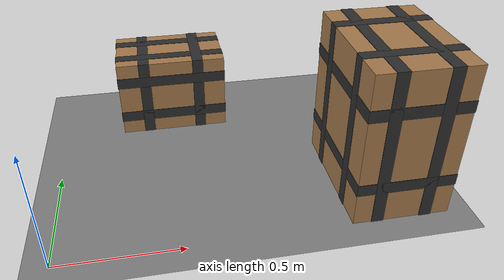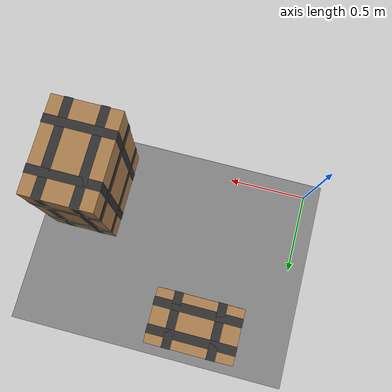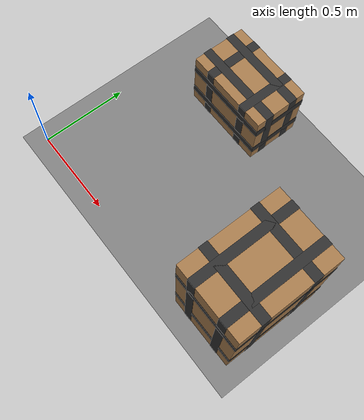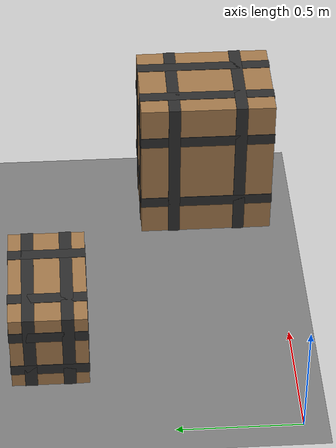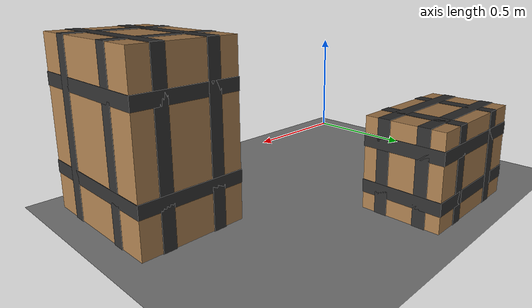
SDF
<sdf version="1.9">
 <world name="ecps295_lowbox_s37_monitor">
  <model name="ground_plane">
   <static>true</static>
   <link name="link">
    <collision name="collision">
     <geometry><plane><normal>0 0 1</normal><size>50 50</size></plane></geometry>
    </collision>
    <visual name="visual">
     <geometry><plane><normal>0 0 1</normal><size>50 50</size></plane></geometry>
     <material><ambient>0.5 0.5 0.5 1</ambient><diffuse>0.5 0.5 0.5 1</diffuse></material>
    </visual>
   </link>
  </model>
  <model name="lb0">
   <static>true</static>
   <pose>0.52 0.98 0.179 0 0 0</pose>
   <link name="link">
    <collision name="c"><geometry><box><size>0.5 0.31 0.36</size></box></geometry></collision>
    <visual name="v">
     <geometry><box><size>0.5 0.31 0.36</size></box></geometry>
     <material><ambient>0.65 0.48 0.30 1</ambient><diffuse>0.65 0.48 0.30 1</diffuse></material>
    </visual>
    <visual name="tape_ring0">
     <pose>0.000 0.000 -0.090 0 0 0</pose>
     <geometry><box><size>0.504 0.314 0.050</size></box></geometry>
     <material><ambient>0.18 0.18 0.18 1</ambient><diffuse>0.18 0.18 0.18 1</diffuse></material>
    </visual>
    <visual name="tape_bx0">
     <pose>-0.125 0.000 0.000 0 0 0</pose>
     <geometry><box><size>0.050 0.314 0.364</size></box></geometry>
     <material><ambient>0.18 0.18 0.18 1</ambient><diffuse>0.18 0.18 0.18 1</diffuse></material>
    </visual>
    <visual name="tape_by0">
     <pose>0.000 -0.077 0.000 0 0 0</pose>
     <geometry><box><size>0.504 0.050 0.364</size></box></geometry>
     <material><ambient>0.18 0.18 0.18 1</ambient><diffuse>0.18 0.18 0.18 1</diffuse></material>
    </visual>
    <visual name="tape_ring1">
     <pose>0.000 0.000 0.090 0 0 0</pose>
     <geometry><box><size>0.504 0.314 0.050</size></box></geometry>
     <material><ambient>0.18 0.18 0.18 1</ambient><diffuse>0.18 0.18 0.18 1</diffuse></material>
    </visual>
    <visual name="tape_bx1">
     <pose>0.125 0.000 0.000 0 0 0</pose>
     <geometry><box><size>0.050 0.314 0.364</size></box></geometry>
     <material><ambient>0.18 0.18 0.18 1</ambient><diffuse>0.18 0.18 0.18 1</diffuse></material>
    </visual>
    <visual name="tape_by1">
     <pose>0.000 0.077 0.000 0 0 0</pose>
     <geometry><box><size>0.504 0.050 0.364</size></box></geometry>
     <material><ambient>0.18 0.18 0.18 1</ambient><diffuse>0.18 0.18 0.18 1</diffuse></material>
    </visual>
   </link>
  </model>
  <model name="lb1">
   <static>true</static>
   <pose>1.35 0.29 0.332 0 0 0</pose>
   <link name="link">
    <collision name="c"><geometry><box><size>0.4 0.56 0.66</size></box></geometry></collision>
    <visual name="v">
     <geometry><box><size>0.4 0.56 0.66</size></box></geometry>
     <material><ambient>0.65 0.48 0.30 1</ambient><diffuse>0.65 0.48 0.30 1</diffuse></material>
    </visual>
    <visual name="tape_ring0">
     <pose>0.000 0.000 -0.165 0 0 0</pose>
     <geometry><box><size>0.404 0.564 0.050</size></box></geometry>
     <material><ambient>0.18 0.18 0.18 1</ambient><diffuse>0.18 0.18 0.18 1</diffuse></material>
    </visual>
    <visual name="tape_bx0">
     <pose>-0.100 0.000 0.000 0 0 0</pose>
     <geometry><box><size>0.050 0.564 0.664</size></box></geometry>
     <material><ambient>0.18 0.18 0.18 1</ambient><diffuse>0.18 0.18 0.18 1</diffuse></material>
    </visual>
    <visual name="tape_by0">
     <pose>0.000 -0.140 0.000 0 0 0</pose>
     <geometry><box><size>0.404 0.050 0.664</size></box></geometry>
     <material><ambient>0.18 0.18 0.18 1</ambient><diffuse>0.18 0.18 0.18 1</diffuse></material>
    </visual>
    <visual name="tape_ring1">
     <pose>0.000 0.000 0.165 0 0 0</pose>
     <geometry><box><size>0.404 0.564 0.050</size></box></geometry>
     <material><ambient>0.18 0.18 0.18 1</ambient><diffuse>0.18 0.18 0.18 1</diffuse></material>
    </visual>
    <visual name="tape_bx1">
     <pose>0.100 0.000 0.000 0 0 0</pose>
     <geometry><box><size>0.050 0.564 0.664</size></box></geometry>
     <material><ambient>0.18 0.18 0.18 1</ambient><diffuse>0.18 0.18 0.18 1</diffuse></material>
    </visual>
    <visual name="tape_by1">
     <pose>0.000 0.140 0.000 0 0 0</pose>
     <geometry><box><size>0.404 0.050 0.664</size></box></geometry>
     <material><ambient>0.18 0.18 0.18 1</ambient><diffuse>0.18 0.18 0.18 1</diffuse></material>
    </visual>
   </link>
  </model>
 </world>
</sdf>
